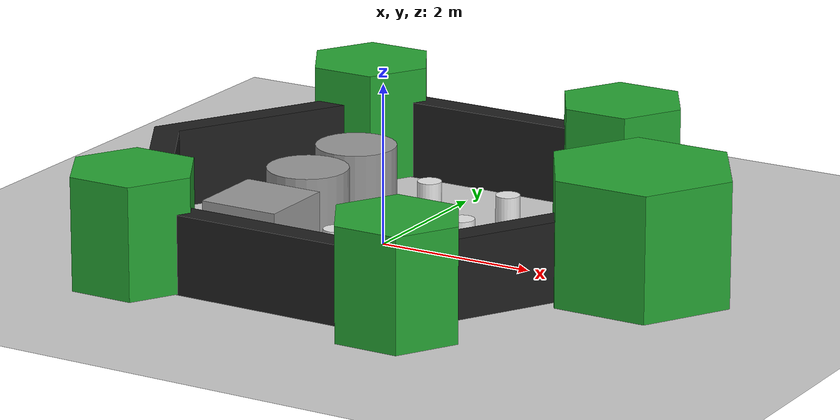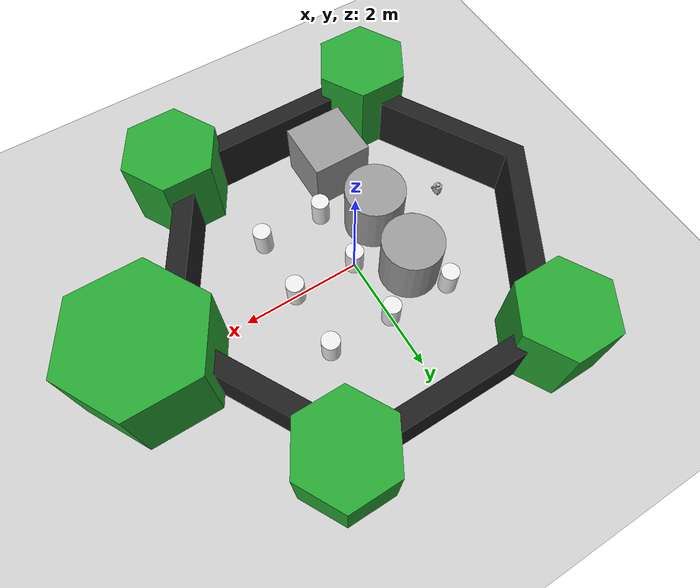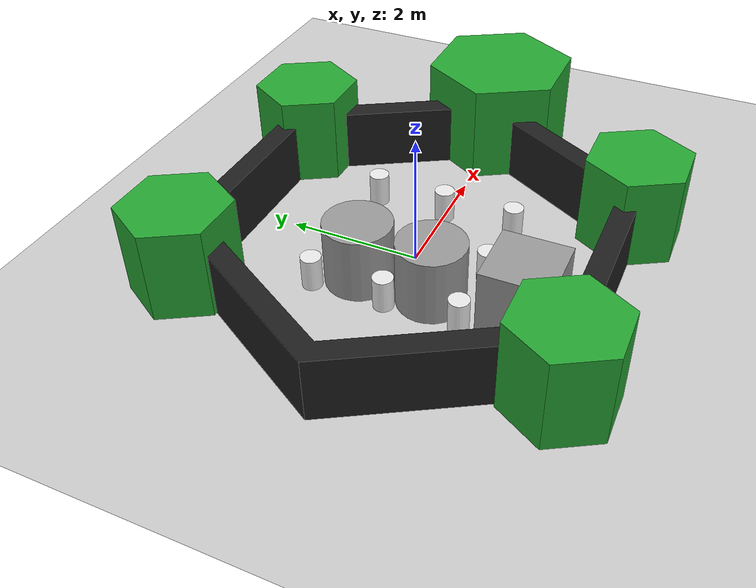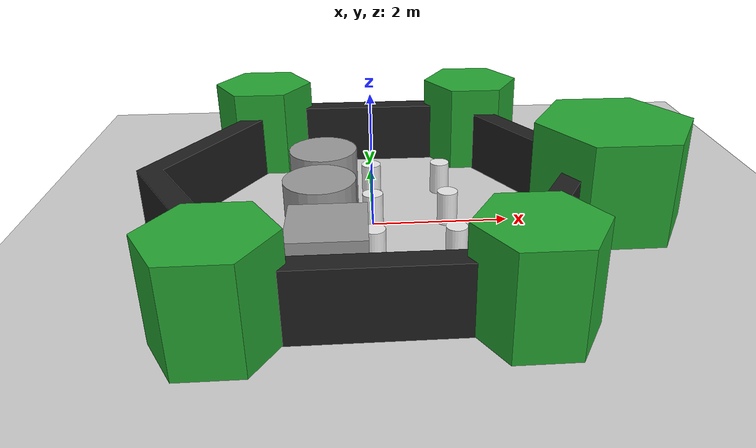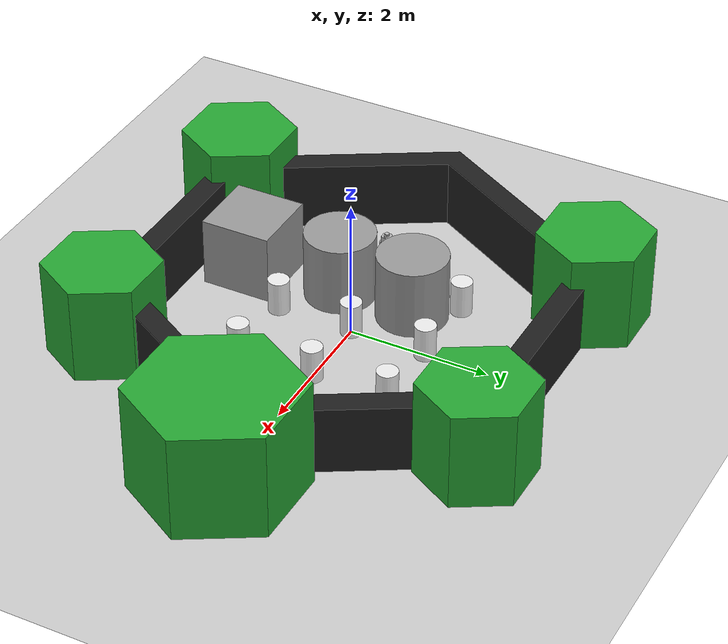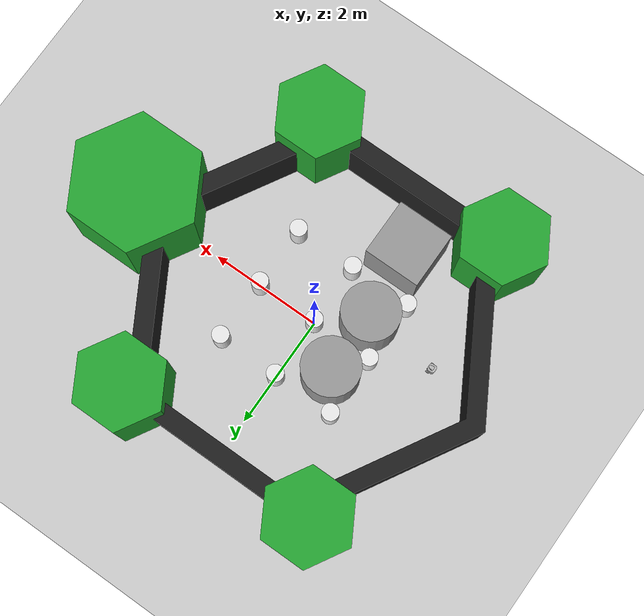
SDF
<sdf version="1.7">
 <world name="default">
  <model name="ground_plane">
   <static>1</static>
   <link name="link">
    <collision name="collision">
     <geometry><plane><normal>0 0 1</normal><size>100 100</size></plane></geometry>
     <surface><friction><ode><mu>100</mu><mu2>50</mu2></ode></friction></surface>
    </collision>
    <visual name="visual">
     <cast_shadows>0</cast_shadows>
     <geometry><plane><normal>0 0 1</normal><size>100 100</size></plane></geometry>
     <material>
      <script><uri>file://media/materials/scripts/gazebo.material</uri><name>Gazebo/Grey</name></script>
     </material>
    </visual>
   </link>
  </model>
  <light name="sun" type="directional">
   <pose>0 0 10 0 -0 0</pose>
   <diffuse>0.8 0.8 0.8 1</diffuse>
   <specular>0.2 0.2 0.2 1</specular>
   <attenuation>
    <range>1000</range>
    <constant>0.9</constant>
    <linear>0.01</linear>
    <quadratic>0.001</quadratic>
   </attenuation>
   <direction>-0.5 0.1 -0.9</direction>
   <spot><inner_angle>0</inner_angle><outer_angle>0</outer_angle><falloff>0</falloff></spot>
  </light>
  <scene><shadows>0</shadows><ambient>0.4 0.4 0.4 1</ambient><background>0.7 0.7 0.7 1</background></scene>
  <physics type="ode">
   <real_time_update_rate>1000</real_time_update_rate>
   <max_step_size>0.001</max_step_size>
   <real_time_factor>1</real_time_factor>
   <ode>
    <solver>
     <type>quick</type>
     <iters>150</iters>
     <precon_iters>0</precon_iters>
     <sor>1.4</sor>
     <use_dynamic_moi_rescaling>1</use_dynamic_moi_rescaling>
    </solver>
    <constraints>
     <cfm>1e-05</cfm>
     <erp>0.2</erp>
     <contact_max_correcting_vel>2000</contact_max_correcting_vel>
     <contact_surface_layer>0.01</contact_surface_layer>
    </constraints>
   </ode>
  </physics>
  <model name="turtlebot3_world">
   <static>1</static>
   <frame name="ros_symbol::__model__" attached_to="ros_symbol::symbol">
    <pose relative_to="__model__">0 0 0 0 -0 0</pose>
   </frame>
   <static>1</static>
   <link name="ros_symbol::symbol">
    <collision name="one_one">
     <pose>-1.1 -1.1 0.25 0 -0 0</pose>
     <geometry><cylinder><radius>0.15</radius><length>0.5</length></cylinder></geometry>
    </collision>
    <visual name="one_one">
     <pose>-1.1 -1.1 0.25 0 -0 0</pose>
     <geometry><cylinder><radius>0.15</radius><length>0.5</length></cylinder></geometry>
     <material>
      <script><uri>file://media/materials/scripts/gazebo.material</uri><name>Gazebo/White</name></script>
     </material>
    </visual>
    <collision name="one_two">
     <pose>-1.1 0 0.25 0 -0 0</pose>
     <geometry><cylinder><radius>0.15</radius><length>0.5</length></cylinder></geometry>
    </collision>
    <visual name="one_two">
     <pose>-1.1 0 0.25 0 -0 0</pose>
     <geometry><cylinder><radius>0.15</radius><length>0.5</length></cylinder></geometry>
     <material>
      <script><uri>file://media/materials/scripts/gazebo.material</uri><name>Gazebo/White</name></script>
     </material>
    </visual>
    <collision name="one_three">
     <pose>-1.1 1.1 0.25 0 -0 0</pose>
     <geometry><cylinder><radius>0.15</radius><length>0.5</length></cylinder></geometry>
    </collision>
    <visual name="one_three">
     <pose>-1.1 1.1 0.25 0 -0 0</pose>
     <geometry><cylinder><radius>0.15</radius><length>0.5</length></cylinder></geometry>
     <material>
      <script><uri>file://media/materials/scripts/gazebo.material</uri><name>Gazebo/White</name></script>
     </material>
    </visual>
    <collision name="two_one">
     <pose>0 -1.1 0.25 0 -0 0</pose>
     <geometry><cylinder><radius>0.15</radius><length>0.5</length></cylinder></geometry>
    </collision>
    <visual name="two_one">
     <pose>0 -1.1 0.25 0 -0 0</pose>
     <geometry><cylinder><radius>0.15</radius><length>0.5</length></cylinder></geometry>
     <material>
      <script><uri>file://media/materials/scripts/gazebo.material</uri><name>Gazebo/White</name></script>
     </material>
    </visual>
    <collision name="two_two">
     <pose>0 0 0.25 0 -0 0</pose>
     <geometry><cylinder><radius>0.15</radius><length>0.5</length></cylinder></geometry>
    </collision>
    <visual name="two_two">
     <pose>0 0 0.25 0 -0 0</pose>
     <geometry><cylinder><radius>0.15</radius><length>0.5</length></cylinder></geometry>
     <material>
      <script><uri>file://media/materials/scripts/gazebo.material</uri><name>Gazebo/White</name></script>
     </material>
    </visual>
    <collision name="two_three">
     <pose>0 1.1 0.25 0 -0 0</pose>
     <geometry><cylinder><radius>0.15</radius><length>0.5</length></cylinder></geometry>
    </collision>
    <visual name="two_three">
     <pose>0 1.1 0.25 0 -0 0</pose>
     <geometry><cylinder><radius>0.15</radius><length>0.5</length></cylinder></geometry>
     <material>
      <script><uri>file://media/materials/scripts/gazebo.material</uri><name>Gazebo/White</name></script>
     </material>
    </visual>
    <collision name="three_one">
     <pose>1.1 -1.1 0.25 0 -0 0</pose>
     <geometry><cylinder><radius>0.15</radius><length>0.5</length></cylinder></geometry>
    </collision>
    <visual name="three_one">
     <pose>1.1 -1.1 0.25 0 -0 0</pose>
     <geometry><cylinder><radius>0.15</radius><length>0.5</length></cylinder></geometry>
     <material>
      <script><uri>file://media/materials/scripts/gazebo.material</uri><name>Gazebo/White</name></script>
     </material>
    </visual>
    <collision name="three_two">
     <pose>1.1 0 0.25 0 -0 0</pose>
     <geometry><cylinder><radius>0.15</radius><length>0.5</length></cylinder></geometry>
    </collision>
    <visual name="three_two">
     <pose>1.1 0 0.25 0 -0 0</pose>
     <geometry><cylinder><radius>0.15</radius><length>0.5</length></cylinder></geometry>
     <material>
      <script><uri>file://media/materials/scripts/gazebo.material</uri><name>Gazebo/White</name></script>
     </material>
    </visual>
    <collision name="three_three">
     <pose>1.1 1.1 0.25 0 -0 0</pose>
     <geometry><cylinder><radius>0.15</radius><length>0.5</length></cylinder></geometry>
    </collision>
    <visual name="three_three">
     <pose>1.1 1.1 0.25 0 -0 0</pose>
     <geometry><cylinder><radius>0.15</radius><length>0.5</length></cylinder></geometry>
     <material>
      <script><uri>file://media/materials/scripts/gazebo.material</uri><name>Gazebo/White</name></script>
     </material>
    </visual>
    <collision name="head">
     <pose>3.5 0 -0.5 0 -0 0</pose>
     <geometry>
      <mesh><uri>model://turtlebot3_world/meshes/hexagon.dae</uri><scale>0.8 0.8 0.8</scale></mesh>
     </geometry>
    </collision>
    <visual name="head">
     <pose>3.5 0 -0.5 0 -0 0</pose>
     <geometry>
      <mesh><uri>model://turtlebot3_world/meshes/hexagon.dae</uri><scale>0.8 0.8 0.8</scale></mesh>
     </geometry>
     <material>
      <script><uri>file://media/materials/scripts/gazebo.material</uri><name>Gazebo/Green</name></script>
     </material>
    </visual>
    <collision name="left_hand">
     <pose>1.8 2.7 0 0 -0 0</pose>
     <geometry>
      <mesh><uri>model://turtlebot3_world/meshes/hexagon.dae</uri><scale>0.55 0.55 0.55</scale></mesh>
     </geometry>
    </collision>
    <visual name="left_hand">
     <pose>1.8 2.7 0 0 -0 0</pose>
     <geometry>
      <mesh><uri>model://turtlebot3_world/meshes/hexagon.dae</uri><scale>0.55 0.55 0.55</scale></mesh>
     </geometry>
     <material>
      <script><uri>file://media/materials/scripts/gazebo.material</uri><name>Gazebo/Green</name></script>
     </material>
    </visual>
    <collision name="right_hand">
     <pose>1.8 -2.7 0 0 -0 0</pose>
     <geometry>
      <mesh><uri>model://turtlebot3_world/meshes/hexagon.dae</uri><scale>0.55 0.55 0.55</scale></mesh>
     </geometry>
    </collision>
    <visual name="right_hand">
     <pose>1.8 -2.7 0 0 -0 0</pose>
     <geometry>
      <mesh><uri>model://turtlebot3_world/meshes/hexagon.dae</uri><scale>0.55 0.55 0.55</scale></mesh>
     </geometry>
     <material>
      <script><uri>file://media/materials/scripts/gazebo.material</uri><name>Gazebo/Green</name></script>
     </material>
    </visual>
    <collision name="left_foot">
     <pose>-1.8 2.7 0 0 -0 0</pose>
     <geometry>
      <mesh><uri>model://turtlebot3_world/meshes/hexagon.dae</uri><scale>0.55 0.55 0.55</scale></mesh>
     </geometry>
    </collision>
    <visual name="left_foot">
     <pose>-1.8 2.7 0 0 -0 0</pose>
     <geometry>
      <mesh><uri>model://turtlebot3_world/meshes/hexagon.dae</uri><scale>0.55 0.55 0.55</scale></mesh>
     </geometry>
     <material>
      <script><uri>file://media/materials/scripts/gazebo.material</uri><name>Gazebo/Green</name></script>
     </material>
    </visual>
    <collision name="right_foot">
     <pose>-1.8 -2.7 0 0 -0 0</pose>
     <geometry>
      <mesh><uri>model://turtlebot3_world/meshes/hexagon.dae</uri><scale>0.55 0.55 0.55</scale></mesh>
     </geometry>
    </collision>
    <visual name="right_foot">
     <pose>-1.8 -2.7 0 0 -0 0</pose>
     <geometry>
      <mesh><uri>model://turtlebot3_world/meshes/hexagon.dae</uri><scale>0.55 0.55 0.55</scale></mesh>
     </geometry>
     <material>
      <script><uri>file://media/materials/scripts/gazebo.material</uri><name>Gazebo/Green</name></script>
     </material>
    </visual>
    <collision name="body">
     <pose>0 0 -0.3 0 0 -1.5708</pose>
     <geometry>
      <mesh><uri>model://turtlebot3_world/meshes/wall.dae</uri><scale>0.25 0.25 0.25</scale></mesh>
     </geometry>
    </collision>
    <visual name="body">
     <pose>0 0 -0.3 0 0 -1.5708</pose>
     <geometry>
      <mesh><uri>model://turtlebot3_world/meshes/wall.dae</uri><scale>0.25 0.25 0.25</scale></mesh>
     </geometry>
     <material>
      <script><uri>file://media/materials/scripts/gazebo.material</uri><name>Gazebo/FlatBlack</name></script>
     </material>
    </visual>
    <pose relative_to="ros_symbol::__model__">0 0 0 0 -0 0</pose>
   </link>
  </model>
  <gravity>0 0 -9.8</gravity>
  <magnetic_field>6e-06 2.3e-05 -4.2e-05</magnetic_field>
  <atmosphere type="adiabatic"/>
  <spherical_coordinates>
   <surface_model>EARTH_WGS84</surface_model>
   <latitude_deg>0</latitude_deg>
   <longitude_deg>0</longitude_deg>
   <elevation>0</elevation>
   <heading_deg>0</heading_deg>
  </spherical_coordinates>
  <model name="burger">
   <pose>-1.99994 -0.500001 0.008527 9.9e-05 0.005738 2e-06</pose>
   <link name="base_footprint">
    <inertial>
     <inertia><ixx>1</ixx><ixy>0</ixy><ixz>0</ixz><iyy>1</iyy><iyz>0</iyz><izz>1</izz></inertia>
     <mass>1</mass>
    </inertial>
   </link>
   <link name="base_link">
    <inertial>
     <pose>-0.032 0 0.07 0 -0 0</pose>
     <inertia>
      <ixx>0.723974</ixx>
      <ixy>4.6864e-10</ixy>
      <ixz>-1.09526e-08</ixz>
      <iyy>0.723974</iyy>
      <iyz>2.85826e-09</iyz>
      <izz>0.65305</izz>
     </inertia>
     <mass>0.825735</mass>
    </inertial>
    <collision name="base_collision">
     <pose>-0.032 0 0.07 0 -0 0</pose>
     <geometry><box><size>0.14 0.14 0.14</size></box></geometry>
    </collision>
    <visual name="base_visual">
     <pose>-0.032 0 0 0 -0 0</pose>
     <geometry>
      <mesh><uri>model://turtlebot3_common/meshes/burger_base.dae</uri><scale>0.001 0.001 0.001</scale></mesh>
     </geometry>
    </visual>
   </link>
   <link name="imu_link">
    <sensor name="tb3_imu" type="imu">
     <always_on>1</always_on>
     <update_rate>200</update_rate>
     <imu>
      <angular_velocity>
       <x><noise type="gaussian"><mean>0</mean><stddev>0.0002</stddev></noise></x>
       <y><noise type="gaussian"><mean>0</mean><stddev>0.0002</stddev></noise></y>
       <z><noise type="gaussian"><mean>0</mean><stddev>0.0002</stddev></noise></z>
      </angular_velocity>
      <linear_acceleration>
       <x><noise type="gaussian"><mean>0</mean><stddev>0.017</stddev></noise></x>
       <y><noise type="gaussian"><mean>0</mean><stddev>0.017</stddev></noise></y>
       <z><noise type="gaussian"><mean>0</mean><stddev>0.017</stddev></noise></z>
      </linear_acceleration>
     </imu>
     <plugin name="turtlebot3_imu" filename="libgazebo_ros_imu_sensor.so">
      <ros><remapping>~/out:=imu</remapping></ros>
     </plugin>
    </sensor>
    <inertial>
     <inertia><ixx>1</ixx><ixy>0</ixy><ixz>0</ixz><iyy>1</iyy><iyz>0</iyz><izz>1</izz></inertia>
     <mass>1</mass>
    </inertial>
   </link>
   <link name="base_scan">
    <inertial>
     <pose>-0.02 0 0.161 0 -0 0</pose>
     <inertia><ixx>0.001</ixx><ixy>0</ixy><ixz>0</ixz><iyy>0.001</iyy><iyz>0</iyz><izz>0.001</izz></inertia>
     <mass>0.114</mass>
    </inertial>
    <collision name="lidar_sensor_collision">
     <pose>-0.02 0 0.161 0 -0 0</pose>
     <geometry><cylinder><radius>0.0508</radius><length>0.055</length></cylinder></geometry>
    </collision>
    <visual name="lidar_sensor_visual">
     <pose>-0.032 0 0.171 0 -0 0</pose>
     <geometry>
      <mesh><uri>model://turtlebot3_common/meshes/lds.dae</uri><scale>0.001 0.001 0.001</scale></mesh>
     </geometry>
    </visual>
    <sensor name="hls_lfcd_lds" type="ray">
     <always_on>1</always_on>
     <visualize>1</visualize>
     <pose>-0.032 0 0.171 0 -0 0</pose>
     <update_rate>5</update_rate>
     <ray>
      <scan>
       <horizontal>
        <samples>360</samples>
        <resolution>1</resolution>
        <min_angle>0</min_angle>
        <max_angle>6.28</max_angle>
       </horizontal>
       <vertical><samples>1</samples><min_angle>0</min_angle><max_angle>0</max_angle></vertical>
      </scan>
      <range><min>0.12</min><max>3.5</max><resolution>0.015</resolution></range>
      <noise><type>gaussian</type><mean>0</mean><stddev>0.01</stddev></noise>
     </ray>
     <plugin name="turtlebot3_laserscan" filename="libgazebo_ros_ray_sensor.so">
      <ros><remapping>~/out:=scan</remapping></ros>
      <output_type>sensor_msgs/LaserScan</output_type>
      <frame_name>base_scan</frame_name>
     </plugin>
    </sensor>
   </link>
   <link name="wheel_left_link">
    <inertial>
     <pose>0 0.08 0.023 -1.57 0 0</pose>
     <inertia>
      <ixx>0.00181582</ixx>
      <ixy>-9.3392e-12</ixy>
      <ixz>1.04909e-11</ixz>
      <iyy>0.00329221</iyy>
      <iyz>5.75694e-11</iyz>
      <izz>0.00181582</izz>
     </inertia>
     <mass>0.0284989</mass>
    </inertial>
    <collision name="wheel_left_collision">
     <pose>0 0.08 0.023 -1.57 0 0</pose>
     <geometry><cylinder><radius>0.033</radius><length>0.018</length></cylinder></geometry>
     <surface>
      <friction>
       <ode><mu>100000</mu><mu2>100000</mu2><fdir1>0 0 0</fdir1><slip1>0</slip1><slip2>0</slip2></ode>
      </friction>
      <contact>
       <ode>
        <soft_cfm>0</soft_cfm>
        <soft_erp>0.2</soft_erp>
        <kp>100000</kp>
        <kd>1</kd>
        <max_vel>0.01</max_vel>
        <min_depth>0.001</min_depth>
       </ode>
      </contact>
     </surface>
    </collision>
    <visual name="wheel_left_visual">
     <pose>0 0.08 0.023 0 -0 0</pose>
     <geometry>
      <mesh><uri>model://turtlebot3_common/meshes/tire.dae</uri><scale>0.001 0.001 0.001</scale></mesh>
     </geometry>
    </visual>
   </link>
   <link name="wheel_right_link">
    <inertial>
     <pose>0 -0.08 0.023 -1.57 0 0</pose>
     <inertia>
      <ixx>0.00181582</ixx>
      <ixy>-9.3392e-12</ixy>
      <ixz>1.04909e-11</ixz>
      <iyy>0.00329221</iyy>
      <iyz>5.75694e-11</iyz>
      <izz>0.00181582</izz>
     </inertia>
     <mass>0.0284989</mass>
    </inertial>
    <collision name="wheel_right_collision">
     <pose>0 -0.08 0.023 -1.57 0 0</pose>
     <geometry><cylinder><radius>0.033</radius><length>0.018</length></cylinder></geometry>
     <surface>
      <friction>
       <ode><mu>100000</mu><mu2>100000</mu2><fdir1>0 0 0</fdir1><slip1>0</slip1><slip2>0</slip2></ode>
      </friction>
      <contact>
       <ode>
        <soft_cfm>0</soft_cfm>
        <soft_erp>0.2</soft_erp>
        <kp>100000</kp>
        <kd>1</kd>
        <max_vel>0.01</max_vel>
        <min_depth>0.001</min_depth>
       </ode>
      </contact>
     </surface>
    </collision>
    <visual name="wheel_right_visual">
     <pose>0 -0.08 0.023 0 -0 0</pose>
     <geometry>
      <mesh><uri>model://turtlebot3_common/meshes/tire.dae</uri><scale>0.001 0.001 0.001</scale></mesh>
     </geometry>
    </visual>
   </link>
   <link name="caster_back_link">
    <pose>-0.081 0 -0.004 -1.57 0 0</pose>
    <inertial>
     <mass>0.005</mass>
     <inertia><ixx>0.001</ixx><ixy>0</ixy><ixz>0</ixz><iyy>0.001</iyy><iyz>0</iyz><izz>0.001</izz></inertia>
    </inertial>
    <collision name="collision">
     <geometry><sphere><radius>0.005</radius></sphere></geometry>
     <surface>
      <contact>
       <ode>
        <soft_cfm>0</soft_cfm>
        <soft_erp>0.2</soft_erp>
        <kp>100000</kp>
        <kd>1</kd>
        <max_vel>0.01</max_vel>
        <min_depth>0.001</min_depth>
       </ode>
      </contact>
     </surface>
    </collision>
   </link>
   <joint name="base_joint" type="fixed">
    <parent>base_footprint</parent>
    <child>base_link</child>
    <pose>0 0 0.01 0 -0 0</pose>
   </joint>
   <joint name="wheel_left_joint" type="revolute">
    <parent>base_link</parent>
    <child>wheel_left_link</child>
    <pose>0 0.08 0.023 -1.57 0 0</pose>
    <axis>
     <xyz>0 0 1</xyz>
     <limit><lower>-1e+16</lower><upper>1e+16</upper></limit>
     <dynamics><spring_reference>0</spring_reference><spring_stiffness>0</spring_stiffness></dynamics>
    </axis>
   </joint>
   <joint name="wheel_right_joint" type="revolute">
    <parent>base_link</parent>
    <child>wheel_right_link</child>
    <pose>0 -0.08 0.023 -1.57 0 0</pose>
    <axis>
     <xyz>0 0 1</xyz>
     <limit><lower>-1e+16</lower><upper>1e+16</upper></limit>
     <dynamics><spring_reference>0</spring_reference><spring_stiffness>0</spring_stiffness></dynamics>
    </axis>
   </joint>
   <joint name="caster_back_joint" type="ball"><parent>base_link</parent><child>caster_back_link</child></joint>
   <joint name="imu_joint" type="fixed">
    <parent>base_link</parent>
    <child>imu_link</child>
    <pose>-0.032 0 0.068 0 -0 0</pose>
    <axis><xyz>0 0 1</xyz><limit><lower>-1e+16</lower><upper>1e+16</upper></limit></axis>
   </joint>
   <joint name="lidar_joint" type="fixed">
    <parent>base_link</parent>
    <child>base_scan</child>
    <pose>-0.032 0 0.171 0 -0 0</pose>
    <axis><xyz>0 0 1</xyz><limit><lower>-1e+16</lower><upper>1e+16</upper></limit></axis>
   </joint>
   <plugin name="turtlebot3_diff_drive" filename="libgazebo_ros_diff_drive.so">
    <update_rate>30</update_rate>
    <left_joint>wheel_left_joint</left_joint>
    <right_joint>wheel_right_joint</right_joint>
    <wheel_separation>0.160</wheel_separation>
    <wheel_diameter>0.066</wheel_diameter>
    <max_wheel_torque>20</max_wheel_torque>
    <max_wheel_acceleration>1.0</max_wheel_acceleration>
    <command_topic>cmd_vel</command_topic>
    <publish_odom>1</publish_odom>
    <publish_odom_tf>1</publish_odom_tf>
    <publish_wheel_tf>0</publish_wheel_tf>
    <odometry_topic>odom</odometry_topic>
    <odometry_frame>odom</odometry_frame>
    <robot_base_frame>base_footprint</robot_base_frame>
   </plugin>
   <plugin name="turtlebot3_joint_state" filename="libgazebo_ros_joint_state_publisher.so">
    <ros><remapping>~/out:=joint_states</remapping></ros>
    <update_rate>30</update_rate>
    <joint_name>wheel_left_joint</joint_name>
    <joint_name>wheel_right_joint</joint_name>
   </plugin>
  </model>
  <model name="unit_cylinder">
   <pose>-0.715272 0.549296 0.499997 -4e-06 -4e-06 -0</pose>
   <link name="link">
    <inertial>
     <mass>1</mass>
     <inertia><ixx>0.145833</ixx><ixy>0</ixy><ixz>0</ixz><iyy>0.145833</iyy><iyz>0</iyz><izz>0.125</izz></inertia>
    </inertial>
    <collision name="collision">
     <geometry><cylinder><radius>0.5</radius><length>1</length></cylinder></geometry>
    </collision>
    <visual name="visual">
     <geometry><cylinder><radius>0.5</radius><length>1</length></cylinder></geometry>
     <material>
      <script><name>Gazebo/Grey</name><uri>file://media/materials/scripts/gazebo.material</uri></script>
     </material>
    </visual>
   </link>
  </model>
  <model name="unit_cylinder_0">
   <pose>-0.725931 -0.548025 0.499993 4e-06 4e-06 -0</pose>
   <link name="link">
    <inertial>
     <mass>1</mass>
     <inertia><ixx>0.145833</ixx><ixy>0</ixy><ixz>0</ixz><iyy>0.145833</iyy><iyz>0</iyz><izz>0.125</izz></inertia>
    </inertial>
    <collision name="collision">
     <geometry><cylinder><radius>0.5</radius><length>1</length></cylinder></geometry>
    </collision>
    <visual name="visual">
     <geometry><cylinder><radius>0.5</radius><length>1</length></cylinder></geometry>
     <material>
      <script><name>Gazebo/Grey</name><uri>file://media/materials/scripts/gazebo.material</uri></script>
     </material>
    </visual>
   </link>
  </model>
  <model name="unit_box">
   <pose>-0.584132 -1.81586 0.5 0 -0 0</pose>
   <link name="link">
    <inertial>
     <mass>1</mass>
     <inertia>
      <ixx>0.166667</ixx>
      <ixy>0</ixy>
      <ixz>0</ixz>
      <iyy>0.166667</iyy>
      <iyz>0</iyz>
      <izz>0.166667</izz>
     </inertia>
    </inertial>
    <collision name="collision"><geometry><box><size>1 1 1</size></box></geometry></collision>
    <visual name="visual">
     <geometry><box><size>1 1 1</size></box></geometry>
     <material>
      <script><name>Gazebo/Grey</name><uri>file://media/materials/scripts/gazebo.material</uri></script>
     </material>
    </visual>
   </link>
  </model>
 </world>
</sdf>
